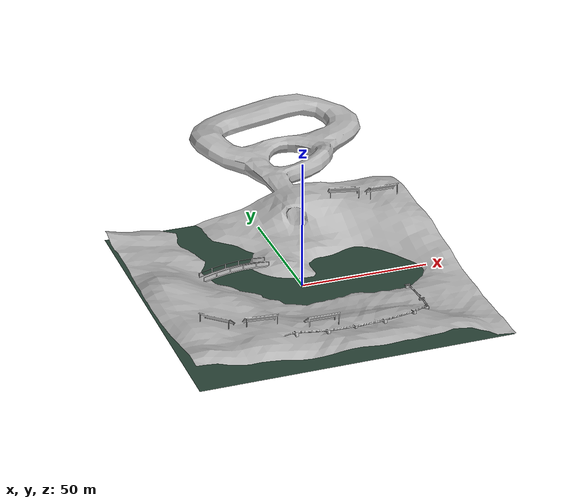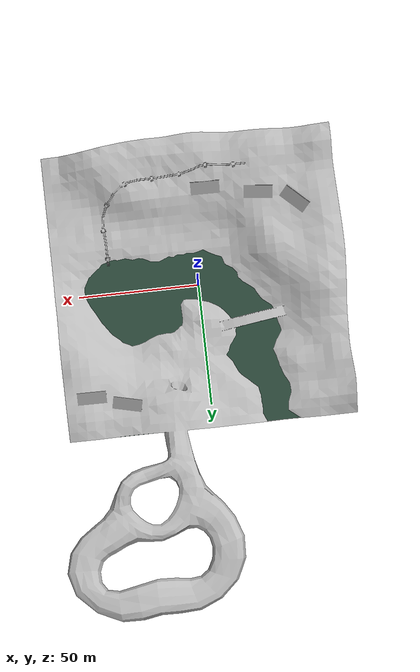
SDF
<sdf version="1.6">
 <world name="default">
  <light name="sun" type="directional">
   <pose>0 0 10 0 -0 0</pose>
   <diffuse>1 1 1 1</diffuse>
   <specular>0.2 0.2 0.2 1</specular>
   <attenuation>
    <range>1000</range>
    <constant>0.9</constant>
    <linear>0.01</linear>
    <quadratic>0.001</quadratic>
   </attenuation>
   <direction>-0.5 -0.5 -1</direction>
  </light>
  <physics name="default_physics" default="0" type="ode">
   <max_step_size>0.001</max_step_size>
   <real_time_factor>1</real_time_factor>
   <real_time_update_rate>1000</real_time_update_rate>
  </physics>
  <scene><ambient>1 1 1 1</ambient><background>1 1 1 1</background><shadows>1</shadows></scene>
  <spherical_coordinates>
   <surface_model>EARTH_WGS84</surface_model>
   <latitude_deg>0</latitude_deg>
   <longitude_deg>0</longitude_deg>
   <elevation>0</elevation>
   <heading_deg>0</heading_deg>
  </spherical_coordinates>
  <gravity>0 0 -9.8</gravity>
  <magnetic_field>6e-06 2.3e-05 -4.2e-05</magnetic_field>
  <atmosphere type="adiabatic"/>
  <audio><device>default</device></audio>
  <model name="inspection_water_geom">
   <link name="inspection_water_link">
    <inertial>
     <mass>1</mass>
     <inertia><ixx>1</ixx><ixy>0</ixy><ixz>0</ixz><iyy>1</iyy><iyz>0</iyz><izz>1</izz></inertia>
    </inertial>
    <visual name="inspection_water_link_visual">
     <geometry>
      <mesh><scale>2 2 2</scale><uri>model://cpr_inspection/meshes/inspection_water.dae</uri></mesh>
     </geometry>
    </visual>
   </link>
   <static>1</static>
  </model>
  <model name="inspection_geom">
   <link name="inspection_world_link">
    <inertial>
     <mass>1</mass>
     <inertia><ixx>1</ixx><ixy>0</ixy><ixz>0</ixz><iyy>1</iyy><iyz>0</iyz><izz>1</izz></inertia>
    </inertial>
    <collision name="inspection_world_link_collision">
     <geometry>
      <mesh><scale>2 2 2</scale><uri>model://cpr_inspection/meshes/inspection_world.dae</uri></mesh>
     </geometry>
    </collision>
    <visual name="inspection_world_link_visual">
     <geometry>
      <mesh><scale>2 2 2</scale><uri>model://cpr_inspection/meshes/inspection_world.dae</uri></mesh>
     </geometry>
    </visual>
   </link>
   <static>1</static>
  </model>
 </world>
</sdf>
